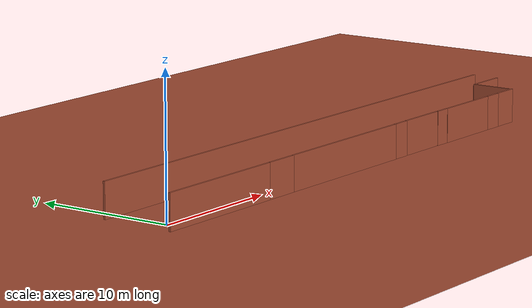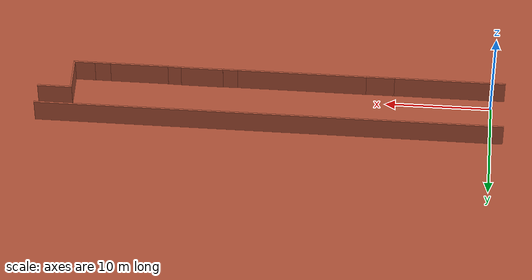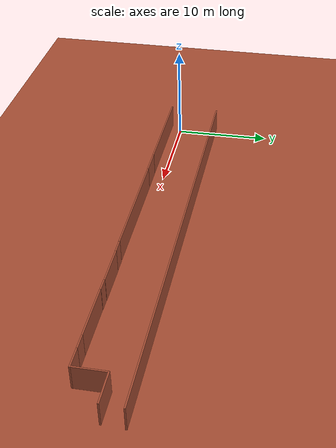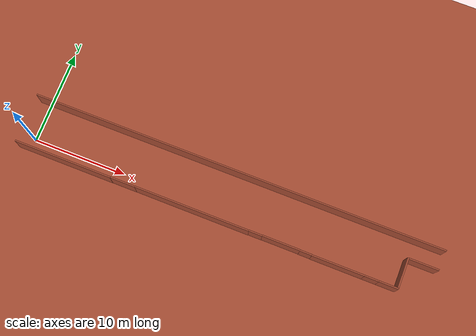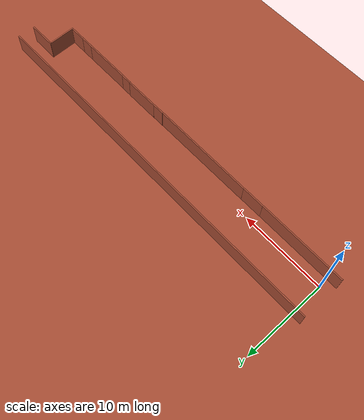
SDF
<sdf version="1.7">
 <world name="default">
  <light name="sun" type="directional">
   <pose>0 0 10 0 -0 0</pose>
   <diffuse>0.8 0.8 0.8 1</diffuse>
   <specular>0.2 0.2 0.2 1</specular>
   <attenuation>
    <range>1000</range>
    <constant>0.9</constant>
    <linear>0.01</linear>
    <quadratic>0.001</quadratic>
   </attenuation>
   <direction>-0.5 0.1 -0.9</direction>
   <spot><inner_angle>0</inner_angle><outer_angle>0</outer_angle><falloff>0</falloff></spot>
  </light>
  <model name="ground_plane">
   <link name="Wall_Gap1">
    <collision name="Wall_Gap1_Collision">
     <geometry><box><size>2.6733 0.15 2.5</size></box></geometry>
     <pose>0 0 1.25 0 -0 0</pose>
    </collision>
    <visual name="Wall_Gap1_Visual">
     <pose>0 0 1.25 0 -0 0</pose>
     <geometry><box><size>2.6733 0.15 2.5</size></box></geometry>
     <material>
      <script><uri>file://media/materials/scripts/gazebo.material</uri><name>Gazebo/Bricks</name></script>
      <ambient>1 1 1 1</ambient>
     </material>
     <meta><layer>0</layer></meta>
    </visual>
    <pose>-10.30833 -2.61836 0 0 -0 0</pose>
   </link>
   <link name="Wall_Gap2">
    <collision name="Wall_Gap2_Collision">
     <geometry><box><size>1.4061 0.15 2.5</size></box></geometry>
     <pose>0 0 1.25 0 -0 0</pose>
    </collision>
    <visual name="Wall_Gap2_Visual">
     <pose>0 0 1.25 0 -0 0</pose>
     <geometry><box><size>1.4061 0.15 2.5</size></box></geometry>
     <material>
      <script><uri>file://media/materials/scripts/gazebo.material</uri><name>Gazebo/Bricks</name></script>
      <ambient>1 1 1 1</ambient>
     </material>
     <meta><layer>0</layer></meta>
    </visual>
    <pose>3.98139 -2.58602 0 0 -0 0</pose>
   </link>
   <link name="Wall_Gap3">
    <collision name="Wall_Gap3_Collision">
     <geometry><box><size>1.2495 0.15 2.5</size></box></geometry>
     <pose>0 0 1.25 0 -0 0</pose>
    </collision>
    <visual name="Wall_Gap3_Visual">
     <pose>0 0 1.25 0 -0 0</pose>
     <geometry><box><size>1.2495 0.15 2.5</size></box></geometry>
     <material>
      <script><uri>file://media/materials/scripts/gazebo.material</uri><name>Gazebo/Bricks</name></script>
      <ambient>1 1 1 1</ambient>
     </material>
     <meta><layer>0</layer></meta>
    </visual>
    <pose>9.30917 -2.58912 0 0 -0 0</pose>
   </link>
   <link name="Wall_Gap4">
    <collision name="Wall_Gap4_Collision">
     <geometry><box><size>1.4828 0.15 2.5</size></box></geometry>
     <pose>0 0 1.25 0 -0 0</pose>
    </collision>
    <visual name="Wall_Gap4_Visual">
     <pose>0 0 1.25 0 -0 0</pose>
     <geometry><box><size>1.4828 0.15 2.5</size></box></geometry>
     <material>
      <script><uri>file://media/materials/scripts/gazebo.material</uri><name>Gazebo/Bricks</name></script>
      <ambient>1 1 1 1</ambient>
     </material>
     <meta><layer>0</layer></meta>
    </visual>
    <pose>16.17529 -2.61062 0 0 -0 0</pose>
   </link>
   <static>1</static>
   <link name="link">
    <collision name="collision">
     <geometry><plane><normal>0 0 1</normal><size>100 100</size></plane></geometry>
     <surface><friction><ode><mu>100</mu><mu2>50</mu2></ode></friction></surface>
    </collision>
    <visual name="visual">
     <cast_shadows>0</cast_shadows>
     <geometry><plane><normal>0 0 1</normal><size>100 100</size></plane></geometry>
     <material>
      <script><uri>file://media/materials/scripts/gazebo.material</uri><name>Gazebo/Grey</name></script>
     </material>
    </visual>
   </link>
  </model>
  <gravity>0 0 -9.8</gravity>
  <magnetic_field>6e-06 2.3e-05 -4.2e-05</magnetic_field>
  <atmosphere type="adiabatic"/>
  <physics type="ode">
   <max_step_size>0.001</max_step_size>
   <real_time_factor>1</real_time_factor>
   <real_time_update_rate>1000</real_time_update_rate>
  </physics>
  <scene><ambient>0.4 0.4 0.4 1</ambient><background>0.7 0.7 0.7 1</background><shadows>1</shadows></scene>
  <audio><device>default</device></audio>
  <spherical_coordinates>
   <surface_model>EARTH_WGS84</surface_model>
   <latitude_deg>0</latitude_deg>
   <longitude_deg>0</longitude_deg>
   <elevation>0</elevation>
   <heading_deg>0</heading_deg>
  </spherical_coordinates>
  <model name="primer_piso">
   <pose>20.9036 1.43563 0 0 -0 0</pose>
   <link name="Wall_11">
    <collision name="Wall_11_Collision">
     <geometry><box><size>5.5 0.15 2.5</size></box></geometry>
     <pose>0 0 1.25 0 -0 0</pose>
    </collision>
    <visual name="Wall_11_Visual">
     <pose>0 0 1.25 0 -0 0</pose>
     <geometry><box><size>5.5 0.15 2.5</size></box></geometry>
     <material>
      <script><uri>file://media/materials/scripts/gazebo.material</uri><name>Gazebo/Bricks</name></script>
      <ambient>1 1 1 1</ambient>
     </material>
     <meta><layer>0</layer></meta>
    </visual>
    <pose>12.6839 -2.61062 0 0 -0 0</pose>
   </link>
   <link name="Wall_13">
    <collision name="Wall_13_Collision">
     <geometry><box><size>2.03065 0.15 2.5</size></box></geometry>
     <pose>0 0 1.25 0 -0 0</pose>
    </collision>
    <visual name="Wall_13_Visual">
     <pose>0 0 1.25 0 -0 0</pose>
     <geometry><box><size>2.03065 0.15 2.5</size></box></geometry>
     <material>
      <script><uri>file://media/materials/scripts/gazebo.material</uri><name>Gazebo/Bricks</name></script>
      <ambient>1 1 1 1</ambient>
     </material>
     <meta><layer>0</layer></meta>
    </visual>
    <pose>17.932 -2.61062 0 0 -0 0</pose>
   </link>
   <link name="Wall_15">
    <collision name="Wall_15_Collision">
     <geometry><box><size>3.29046 0.15 2.5</size></box></geometry>
     <pose>0 0 1.25 0 -0 0</pose>
    </collision>
    <visual name="Wall_15_Visual">
     <pose>0 0 1.25 0 -0 0</pose>
     <geometry><box><size>3.29046 0.15 2.5</size></box></geometry>
     <material>
      <script><uri>file://media/materials/scripts/gazebo.material</uri><name>Gazebo/Bricks</name></script>
      <ambient>1 1 1 1</ambient>
     </material>
     <meta><layer>0</layer></meta>
    </visual>
    <pose>18.8723 -1.0251 0 0 -0 1.5708</pose>
   </link>
   <link name="Wall_17">
    <collision name="Wall_17_Collision">
     <geometry><box><size>44.25 0.15 2.5</size></box></geometry>
     <pose>0 0 1.25 0 -0 0</pose>
    </collision>
    <visual name="Wall_17_Visual">
     <pose>0 0 1.25 0 -0 0</pose>
     <geometry><box><size>44.25 0.15 2.5</size></box></geometry>
     <material>
      <script><uri>file://media/materials/scripts/gazebo.material</uri><name>Gazebo/Bricks</name></script>
      <ambient>1 1 1 1</ambient>
     </material>
     <meta><layer>0</layer></meta>
    </visual>
    <pose>0.019978 2.63229 0 0 -0 3.14159</pose>
   </link>
   <link name="Wall_19">
    <collision name="Wall_19_Collision">
     <geometry><box><size>3.25 0.15 2.5</size></box></geometry>
     <pose>0 0 1.25 0 -0 0</pose>
    </collision>
    <visual name="Wall_19_Visual">
     <pose>0 0 1.25 0 -0 0</pose>
     <geometry><box><size>3.25 0.15 2.5</size></box></geometry>
     <material>
      <script><uri>file://media/materials/scripts/gazebo.material</uri><name>Gazebo/Bricks</name></script>
      <ambient>1 1 1 1</ambient>
     </material>
     <meta><layer>0</layer></meta>
    </visual>
    <pose>20.4223 0.565357 0 0 -0 0</pose>
   </link>
   <link name="Wall_5">
    <collision name="Wall_5_Collision">
     <geometry><box><size>10.5 0.15 2.5</size></box></geometry>
     <pose>0 0 1.25 0 -0 0</pose>
    </collision>
    <visual name="Wall_5_Visual">
     <pose>0 0 1.25 0 -0 0</pose>
     <geometry><box><size>10.5 0.15 2.5</size></box></geometry>
     <material>
      <script><uri>file://media/materials/scripts/gazebo.material</uri><name>Gazebo/Bricks</name></script>
      <ambient>1 1 1 1</ambient>
     </material>
     <meta><layer>0</layer></meta>
    </visual>
    <pose>-16.895 -2.63229 0 0 -0 3.14159</pose>
   </link>
   <link name="Wall_7">
    <collision name="Wall_7_Collision">
     <geometry><box><size>12.25 0.15 2.5</size></box></geometry>
     <pose>0 0 1.25 0 -0 0</pose>
    </collision>
    <visual name="Wall_7_Visual">
     <pose>0 0 1.25 0 -0 0</pose>
     <geometry><box><size>12.25 0.15 2.5</size></box></geometry>
     <material>
      <script><uri>file://media/materials/scripts/gazebo.material</uri><name>Gazebo/Bricks</name></script>
      <ambient>1 1 1 1</ambient>
     </material>
     <meta><layer>0</layer></meta>
    </visual>
    <pose>-2.84667 -2.60442 0 0 -0 3.14159</pose>
   </link>
   <link name="Wall_9">
    <collision name="Wall_9_Collision">
     <geometry><box><size>4 0.15 2.5</size></box></geometry>
     <pose>0 0 1.25 0 -0 0</pose>
    </collision>
    <visual name="Wall_9_Visual">
     <pose>0 0 1.25 0 -0 0</pose>
     <geometry><box><size>4 0.15 2.5</size></box></geometry>
     <material>
      <script><uri>file://media/materials/scripts/gazebo.material</uri><name>Gazebo/Bricks</name></script>
      <ambient>1 1 1 1</ambient>
     </material>
     <meta><layer>0</layer></meta>
    </visual>
    <pose>6.68444 -2.56762 0 0 -0 0</pose>
   </link>
   <link name="Wall_Gap1">
    <collision name="Wall_Gap1_Collision">
     <geometry><box><size>2.6733 0.15 2.5</size></box></geometry>
     <pose>0 0 1.25 0 -0 0</pose>
    </collision>
    <visual name="Wall_Gap1_Visual">
     <pose>0 0 1.25 0 -0 0</pose>
     <geometry><box><size>2.6733 0.15 2.5</size></box></geometry>
     <material>
      <script><uri>file://media/materials/scripts/gazebo.material</uri><name>Gazebo/Bricks</name></script>
      <ambient>1 1 1 1</ambient>
     </material>
     <meta><layer>0</layer></meta>
    </visual>
    <pose>-10.30833 -2.61836 0 0 -0 0</pose>
   </link>
   <link name="Wall_Gap2">
    <collision name="Wall_Gap2_Collision">
     <geometry><box><size>1.4061 0.15 2.5</size></box></geometry>
     <pose>0 0 1.25 0 -0 0</pose>
    </collision>
    <visual name="Wall_Gap2_Visual">
     <pose>0 0 1.25 0 -0 0</pose>
     <geometry><box><size>1.4061 0.15 2.5</size></box></geometry>
     <material>
      <script><uri>file://media/materials/scripts/gazebo.material</uri><name>Gazebo/Bricks</name></script>
      <ambient>1 1 1 1</ambient>
     </material>
     <meta><layer>0</layer></meta>
    </visual>
    <pose>3.98139 -2.58602 0 0 -0 0</pose>
   </link>
   <link name="Wall_Gap3">
    <collision name="Wall_Gap3_Collision">
     <geometry><box><size>1.2495 0.15 2.5</size></box></geometry>
     <pose>0 0 1.25 0 -0 0</pose>
    </collision>
    <visual name="Wall_Gap3_Visual">
     <pose>0 0 1.25 0 -0 0</pose>
     <geometry><box><size>1.2495 0.15 2.5</size></box></geometry>
     <material>
      <script><uri>file://media/materials/scripts/gazebo.material</uri><name>Gazebo/Bricks</name></script>
      <ambient>1 1 1 1</ambient>
     </material>
     <meta><layer>0</layer></meta>
    </visual>
    <pose>9.30917 -2.58912 0 0 -0 0</pose>
   </link>
   <link name="Wall_Gap4">
    <collision name="Wall_Gap4_Collision">
     <geometry><box><size>1.4828 0.15 2.5</size></box></geometry>
     <pose>0 0 1.25 0 -0 0</pose>
    </collision>
    <visual name="Wall_Gap4_Visual">
     <pose>0 0 1.25 0 -0 0</pose>
     <geometry><box><size>1.4828 0.15 2.5</size></box></geometry>
     <material>
      <script><uri>file://media/materials/scripts/gazebo.material</uri><name>Gazebo/Bricks</name></script>
      <ambient>1 1 1 1</ambient>
     </material>
     <meta><layer>0</layer></meta>
    </visual>
    <pose>16.17529 -2.61062 0 0 -0 0</pose>
   </link>
   <static>1</static>
  </model>
 </world>
</sdf>
